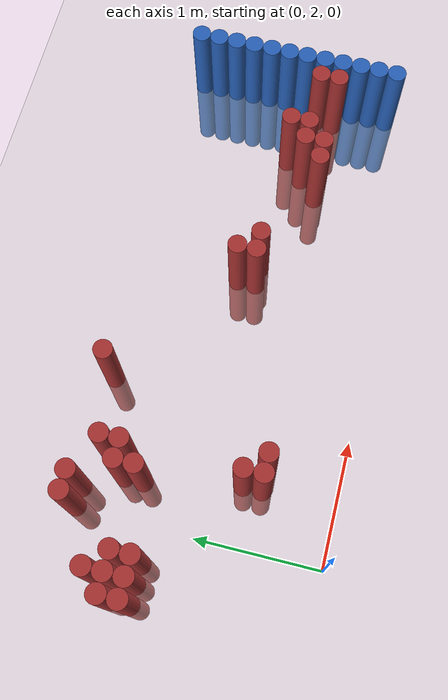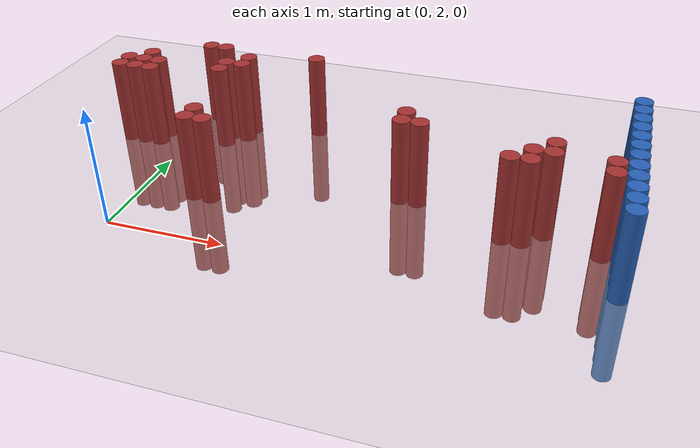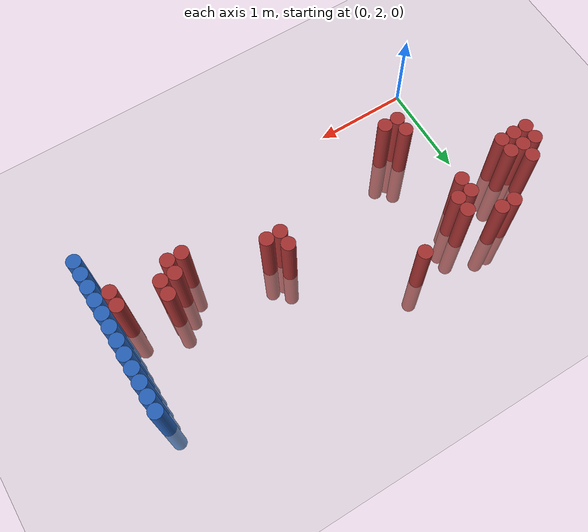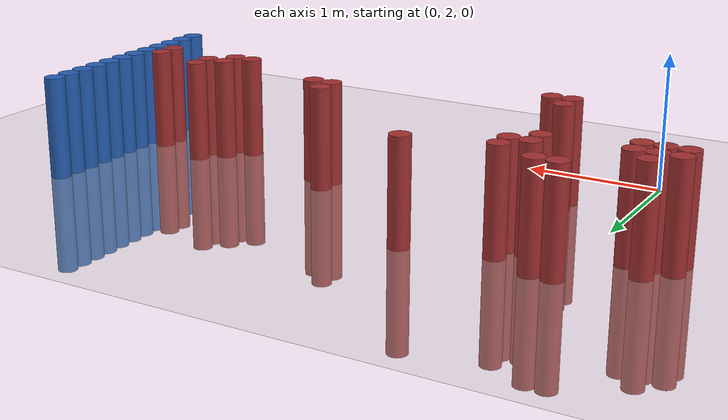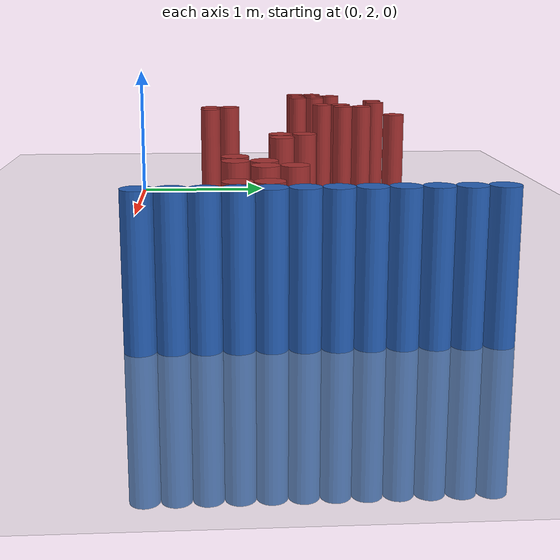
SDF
<sdf version="1.6">
 <world name="default">
  <model name="ground_plane">
   <static>1</static>
   <link name="link">
    <collision name="collision">
     <geometry><plane><normal>0 0 1</normal><size>100 100</size></plane></geometry>
     <surface><friction><ode><mu>100</mu><mu2>50</mu2></ode></friction></surface>
    </collision>
    <visual name="visual">
     <cast_shadows>0</cast_shadows>
     <geometry><plane><normal>0 0 1</normal><size>100 100</size></plane></geometry>
     <material>
      <script><uri>file://media/materials/scripts/gazebo.material</uri><name>Gazebo/Grey</name></script>
     </material>
    </visual>
   </link>
  </model>
  <model name="unit_cylinder_144">
   <static>1</static>
   <pose>3.925000 2.275000 0.000000 0.000000 0.000000 0.000000</pose>
   <link name="link">
    <inertial>
     <mass>1</mass>
     <inertia><ixx>0.145833</ixx><ixy>0</ixy><ixz>0</ixz><iyy>0.145833</iyy><iyz>0</iyz><izz>0.125</izz></inertia>
    </inertial>
    <collision name="collision">
     <geometry><cylinder><radius>0.075000</radius><length>1.5</length></cylinder></geometry>
    </collision>
    <visual name="visual">
     <geometry><cylinder><radius>0.075000</radius><length>1.5</length></cylinder></geometry>
     <material>
      <ambient>0.152000 0.379000 0.720000 1</ambient>
      <diffuse>0.152000 0.379000 0.720000 1</diffuse>
     </material>
     <material>
      <script><name>Gazebo/Grey</name><uri>file://media/materials/scripts/gazebo.material</uri></script>
     </material>
    </visual>
   </link>
  </model>
  <model name="unit_cylinder_146">
   <static>1</static>
   <pose>3.925000 2.425000 0.000000 0.000000 0.000000 0.000000</pose>
   <link name="link">
    <inertial>
     <mass>1</mass>
     <inertia><ixx>0.145833</ixx><ixy>0</ixy><ixz>0</ixz><iyy>0.145833</iyy><iyz>0</iyz><izz>0.125</izz></inertia>
    </inertial>
    <collision name="collision">
     <geometry><cylinder><radius>0.075000</radius><length>1.5</length></cylinder></geometry>
    </collision>
    <visual name="visual">
     <geometry><cylinder><radius>0.075000</radius><length>1.5</length></cylinder></geometry>
     <material>
      <ambient>0.152000 0.379000 0.720000 1</ambient>
      <diffuse>0.152000 0.379000 0.720000 1</diffuse>
     </material>
     <material>
      <script><name>Gazebo/Grey</name><uri>file://media/materials/scripts/gazebo.material</uri></script>
     </material>
    </visual>
   </link>
  </model>
  <model name="unit_cylinder_148">
   <static>1</static>
   <pose>3.925000 2.575000 0.000000 0.000000 0.000000 0.000000</pose>
   <link name="link">
    <inertial>
     <mass>1</mass>
     <inertia><ixx>0.145833</ixx><ixy>0</ixy><ixz>0</ixz><iyy>0.145833</iyy><iyz>0</iyz><izz>0.125</izz></inertia>
    </inertial>
    <collision name="collision">
     <geometry><cylinder><radius>0.075000</radius><length>1.5</length></cylinder></geometry>
    </collision>
    <visual name="visual">
     <geometry><cylinder><radius>0.075000</radius><length>1.5</length></cylinder></geometry>
     <material>
      <ambient>0.152000 0.379000 0.720000 1</ambient>
      <diffuse>0.152000 0.379000 0.720000 1</diffuse>
     </material>
     <material>
      <script><name>Gazebo/Grey</name><uri>file://media/materials/scripts/gazebo.material</uri></script>
     </material>
    </visual>
   </link>
  </model>
  <model name="unit_cylinder_150">
   <static>1</static>
   <pose>3.925000 2.725000 0.000000 0.000000 0.000000 0.000000</pose>
   <link name="link">
    <inertial>
     <mass>1</mass>
     <inertia><ixx>0.145833</ixx><ixy>0</ixy><ixz>0</ixz><iyy>0.145833</iyy><iyz>0</iyz><izz>0.125</izz></inertia>
    </inertial>
    <collision name="collision">
     <geometry><cylinder><radius>0.075000</radius><length>1.5</length></cylinder></geometry>
    </collision>
    <visual name="visual">
     <geometry><cylinder><radius>0.075000</radius><length>1.5</length></cylinder></geometry>
     <material>
      <ambient>0.152000 0.379000 0.720000 1</ambient>
      <diffuse>0.152000 0.379000 0.720000 1</diffuse>
     </material>
     <material>
      <script><name>Gazebo/Grey</name><uri>file://media/materials/scripts/gazebo.material</uri></script>
     </material>
    </visual>
   </link>
  </model>
  <model name="unit_cylinder_152">
   <static>1</static>
   <pose>3.925000 2.875000 0.000000 0.000000 0.000000 0.000000</pose>
   <link name="link">
    <inertial>
     <mass>1</mass>
     <inertia><ixx>0.145833</ixx><ixy>0</ixy><ixz>0</ixz><iyy>0.145833</iyy><iyz>0</iyz><izz>0.125</izz></inertia>
    </inertial>
    <collision name="collision">
     <geometry><cylinder><radius>0.075000</radius><length>1.5</length></cylinder></geometry>
    </collision>
    <visual name="visual">
     <geometry><cylinder><radius>0.075000</radius><length>1.5</length></cylinder></geometry>
     <material>
      <ambient>0.152000 0.379000 0.720000 1</ambient>
      <diffuse>0.152000 0.379000 0.720000 1</diffuse>
     </material>
     <material>
      <script><name>Gazebo/Grey</name><uri>file://media/materials/scripts/gazebo.material</uri></script>
     </material>
    </visual>
   </link>
  </model>
  <model name="unit_cylinder_154">
   <static>1</static>
   <pose>3.925000 3.025000 0.000000 0.000000 0.000000 0.000000</pose>
   <link name="link">
    <inertial>
     <mass>1</mass>
     <inertia><ixx>0.145833</ixx><ixy>0</ixy><ixz>0</ixz><iyy>0.145833</iyy><iyz>0</iyz><izz>0.125</izz></inertia>
    </inertial>
    <collision name="collision">
     <geometry><cylinder><radius>0.075000</radius><length>1.5</length></cylinder></geometry>
    </collision>
    <visual name="visual">
     <geometry><cylinder><radius>0.075000</radius><length>1.5</length></cylinder></geometry>
     <material>
      <ambient>0.152000 0.379000 0.720000 1</ambient>
      <diffuse>0.152000 0.379000 0.720000 1</diffuse>
     </material>
     <material>
      <script><name>Gazebo/Grey</name><uri>file://media/materials/scripts/gazebo.material</uri></script>
     </material>
    </visual>
   </link>
  </model>
  <model name="unit_cylinder_156">
   <static>1</static>
   <pose>3.925000 3.175000 0.000000 0.000000 0.000000 0.000000</pose>
   <link name="link">
    <inertial>
     <mass>1</mass>
     <inertia><ixx>0.145833</ixx><ixy>0</ixy><ixz>0</ixz><iyy>0.145833</iyy><iyz>0</iyz><izz>0.125</izz></inertia>
    </inertial>
    <collision name="collision">
     <geometry><cylinder><radius>0.075000</radius><length>1.5</length></cylinder></geometry>
    </collision>
    <visual name="visual">
     <geometry><cylinder><radius>0.075000</radius><length>1.5</length></cylinder></geometry>
     <material>
      <ambient>0.152000 0.379000 0.720000 1</ambient>
      <diffuse>0.152000 0.379000 0.720000 1</diffuse>
     </material>
     <material>
      <script><name>Gazebo/Grey</name><uri>file://media/materials/scripts/gazebo.material</uri></script>
     </material>
    </visual>
   </link>
  </model>
  <model name="unit_cylinder_158">
   <static>1</static>
   <pose>3.925000 3.325000 0.000000 0.000000 0.000000 0.000000</pose>
   <link name="link">
    <inertial>
     <mass>1</mass>
     <inertia><ixx>0.145833</ixx><ixy>0</ixy><ixz>0</ixz><iyy>0.145833</iyy><iyz>0</iyz><izz>0.125</izz></inertia>
    </inertial>
    <collision name="collision">
     <geometry><cylinder><radius>0.075000</radius><length>1.5</length></cylinder></geometry>
    </collision>
    <visual name="visual">
     <geometry><cylinder><radius>0.075000</radius><length>1.5</length></cylinder></geometry>
     <material>
      <ambient>0.152000 0.379000 0.720000 1</ambient>
      <diffuse>0.152000 0.379000 0.720000 1</diffuse>
     </material>
     <material>
      <script><name>Gazebo/Grey</name><uri>file://media/materials/scripts/gazebo.material</uri></script>
     </material>
    </visual>
   </link>
  </model>
  <model name="unit_cylinder_160">
   <static>1</static>
   <pose>3.925000 3.475000 0.000000 0.000000 0.000000 0.000000</pose>
   <link name="link">
    <inertial>
     <mass>1</mass>
     <inertia><ixx>0.145833</ixx><ixy>0</ixy><ixz>0</ixz><iyy>0.145833</iyy><iyz>0</iyz><izz>0.125</izz></inertia>
    </inertial>
    <collision name="collision">
     <geometry><cylinder><radius>0.075000</radius><length>1.5</length></cylinder></geometry>
    </collision>
    <visual name="visual">
     <geometry><cylinder><radius>0.075000</radius><length>1.5</length></cylinder></geometry>
     <material>
      <ambient>0.152000 0.379000 0.720000 1</ambient>
      <diffuse>0.152000 0.379000 0.720000 1</diffuse>
     </material>
     <material>
      <script><name>Gazebo/Grey</name><uri>file://media/materials/scripts/gazebo.material</uri></script>
     </material>
    </visual>
   </link>
  </model>
  <model name="unit_cylinder_162">
   <static>1</static>
   <pose>3.925000 3.625000 0.000000 0.000000 0.000000 0.000000</pose>
   <link name="link">
    <inertial>
     <mass>1</mass>
     <inertia><ixx>0.145833</ixx><ixy>0</ixy><ixz>0</ixz><iyy>0.145833</iyy><iyz>0</iyz><izz>0.125</izz></inertia>
    </inertial>
    <collision name="collision">
     <geometry><cylinder><radius>0.075000</radius><length>1.5</length></cylinder></geometry>
    </collision>
    <visual name="visual">
     <geometry><cylinder><radius>0.075000</radius><length>1.5</length></cylinder></geometry>
     <material>
      <ambient>0.152000 0.379000 0.720000 1</ambient>
      <diffuse>0.152000 0.379000 0.720000 1</diffuse>
     </material>
     <material>
      <script><name>Gazebo/Grey</name><uri>file://media/materials/scripts/gazebo.material</uri></script>
     </material>
    </visual>
   </link>
  </model>
  <model name="unit_cylinder_164">
   <static>1</static>
   <pose>3.925000 3.775000 0.000000 0.000000 0.000000 0.000000</pose>
   <link name="link">
    <inertial>
     <mass>1</mass>
     <inertia><ixx>0.145833</ixx><ixy>0</ixy><ixz>0</ixz><iyy>0.145833</iyy><iyz>0</iyz><izz>0.125</izz></inertia>
    </inertial>
    <collision name="collision">
     <geometry><cylinder><radius>0.075000</radius><length>1.5</length></cylinder></geometry>
    </collision>
    <visual name="visual">
     <geometry><cylinder><radius>0.075000</radius><length>1.5</length></cylinder></geometry>
     <material>
      <ambient>0.152000 0.379000 0.720000 1</ambient>
      <diffuse>0.152000 0.379000 0.720000 1</diffuse>
     </material>
     <material>
      <script><name>Gazebo/Grey</name><uri>file://media/materials/scripts/gazebo.material</uri></script>
     </material>
    </visual>
   </link>
  </model>
  <model name="unit_cylinder_166">
   <static>1</static>
   <pose>3.925000 3.925000 0.000000 0.000000 0.000000 0.000000</pose>
   <link name="link">
    <inertial>
     <mass>1</mass>
     <inertia><ixx>0.145833</ixx><ixy>0</ixy><ixz>0</ixz><iyy>0.145833</iyy><iyz>0</iyz><izz>0.125</izz></inertia>
    </inertial>
    <collision name="collision">
     <geometry><cylinder><radius>0.075000</radius><length>1.5</length></cylinder></geometry>
    </collision>
    <visual name="visual">
     <geometry><cylinder><radius>0.075000</radius><length>1.5</length></cylinder></geometry>
     <material>
      <ambient>0.152000 0.379000 0.720000 1</ambient>
      <diffuse>0.152000 0.379000 0.720000 1</diffuse>
     </material>
     <material>
      <script><name>Gazebo/Grey</name><uri>file://media/materials/scripts/gazebo.material</uri></script>
     </material>
    </visual>
   </link>
  </model>
  <model name="unit_cylinder_304">
   <static>1</static>
   <pose>-0.575000 3.325000 0.000000 0.000000 0.000000 0.000000</pose>
   <link name="link">
    <inertial>
     <mass>1</mass>
     <inertia><ixx>0.145833</ixx><ixy>0</ixy><ixz>0</ixz><iyy>0.145833</iyy><iyz>0</iyz><izz>0.125</izz></inertia>
    </inertial>
    <collision name="collision">
     <geometry><cylinder><radius>0.075000</radius><length>1.5</length></cylinder></geometry>
    </collision>
    <visual name="visual">
     <geometry><cylinder><radius>0.075000</radius><length>1.5</length></cylinder></geometry>
     <material>
      <ambient>0.648000 0.192000 0.192000 1</ambient>
      <diffuse>0.648000 0.192000 0.192000 1</diffuse>
     </material>
     <material>
      <script><name>Gazebo/Grey</name><uri>file://media/materials/scripts/gazebo.material</uri></script>
     </material>
    </visual>
   </link>
  </model>
  <model name="unit_cylinder_305">
   <static>1</static>
   <pose>-0.575000 3.475000 0.000000 0.000000 0.000000 0.000000</pose>
   <link name="link">
    <inertial>
     <mass>1</mass>
     <inertia><ixx>0.145833</ixx><ixy>0</ixy><ixz>0</ixz><iyy>0.145833</iyy><iyz>0</iyz><izz>0.125</izz></inertia>
    </inertial>
    <collision name="collision">
     <geometry><cylinder><radius>0.075000</radius><length>1.5</length></cylinder></geometry>
    </collision>
    <visual name="visual">
     <geometry><cylinder><radius>0.075000</radius><length>1.5</length></cylinder></geometry>
     <material>
      <ambient>0.648000 0.192000 0.192000 1</ambient>
      <diffuse>0.648000 0.192000 0.192000 1</diffuse>
     </material>
     <material>
      <script><name>Gazebo/Grey</name><uri>file://media/materials/scripts/gazebo.material</uri></script>
     </material>
    </visual>
   </link>
  </model>
  <model name="unit_cylinder_306">
   <static>1</static>
   <pose>-0.425000 3.325000 0.000000 0.000000 0.000000 0.000000</pose>
   <link name="link">
    <inertial>
     <mass>1</mass>
     <inertia><ixx>0.145833</ixx><ixy>0</ixy><ixz>0</ixz><iyy>0.145833</iyy><iyz>0</iyz><izz>0.125</izz></inertia>
    </inertial>
    <collision name="collision">
     <geometry><cylinder><radius>0.075000</radius><length>1.5</length></cylinder></geometry>
    </collision>
    <visual name="visual">
     <geometry><cylinder><radius>0.075000</radius><length>1.5</length></cylinder></geometry>
     <material>
      <ambient>0.648000 0.192000 0.192000 1</ambient>
      <diffuse>0.648000 0.192000 0.192000 1</diffuse>
     </material>
     <material>
      <script><name>Gazebo/Grey</name><uri>file://media/materials/scripts/gazebo.material</uri></script>
     </material>
    </visual>
   </link>
  </model>
  <model name="unit_cylinder_307">
   <static>1</static>
   <pose>-0.425000 3.475000 0.000000 0.000000 0.000000 0.000000</pose>
   <link name="link">
    <inertial>
     <mass>1</mass>
     <inertia><ixx>0.145833</ixx><ixy>0</ixy><ixz>0</ixz><iyy>0.145833</iyy><iyz>0</iyz><izz>0.125</izz></inertia>
    </inertial>
    <collision name="collision">
     <geometry><cylinder><radius>0.075000</radius><length>1.5</length></cylinder></geometry>
    </collision>
    <visual name="visual">
     <geometry><cylinder><radius>0.075000</radius><length>1.5</length></cylinder></geometry>
     <material>
      <ambient>0.648000 0.192000 0.192000 1</ambient>
      <diffuse>0.648000 0.192000 0.192000 1</diffuse>
     </material>
     <material>
      <script><name>Gazebo/Grey</name><uri>file://media/materials/scripts/gazebo.material</uri></script>
     </material>
    </visual>
   </link>
  </model>
  <model name="unit_cylinder_308">
   <static>1</static>
   <pose>-0.425000 3.625000 0.000000 0.000000 0.000000 0.000000</pose>
   <link name="link">
    <inertial>
     <mass>1</mass>
     <inertia><ixx>0.145833</ixx><ixy>0</ixy><ixz>0</ixz><iyy>0.145833</iyy><iyz>0</iyz><izz>0.125</izz></inertia>
    </inertial>
    <collision name="collision">
     <geometry><cylinder><radius>0.075000</radius><length>1.5</length></cylinder></geometry>
    </collision>
    <visual name="visual">
     <geometry><cylinder><radius>0.075000</radius><length>1.5</length></cylinder></geometry>
     <material>
      <ambient>0.648000 0.192000 0.192000 1</ambient>
      <diffuse>0.648000 0.192000 0.192000 1</diffuse>
     </material>
     <material>
      <script><name>Gazebo/Grey</name><uri>file://media/materials/scripts/gazebo.material</uri></script>
     </material>
    </visual>
   </link>
  </model>
  <model name="unit_cylinder_309">
   <static>1</static>
   <pose>-0.275000 3.325000 0.000000 0.000000 0.000000 0.000000</pose>
   <link name="link">
    <inertial>
     <mass>1</mass>
     <inertia><ixx>0.145833</ixx><ixy>0</ixy><ixz>0</ixz><iyy>0.145833</iyy><iyz>0</iyz><izz>0.125</izz></inertia>
    </inertial>
    <collision name="collision">
     <geometry><cylinder><radius>0.075000</radius><length>1.5</length></cylinder></geometry>
    </collision>
    <visual name="visual">
     <geometry><cylinder><radius>0.075000</radius><length>1.5</length></cylinder></geometry>
     <material>
      <ambient>0.648000 0.192000 0.192000 1</ambient>
      <diffuse>0.648000 0.192000 0.192000 1</diffuse>
     </material>
     <material>
      <script><name>Gazebo/Grey</name><uri>file://media/materials/scripts/gazebo.material</uri></script>
     </material>
    </visual>
   </link>
  </model>
  <model name="unit_cylinder_310">
   <static>1</static>
   <pose>-0.275000 3.475000 0.000000 0.000000 0.000000 0.000000</pose>
   <link name="link">
    <inertial>
     <mass>1</mass>
     <inertia><ixx>0.145833</ixx><ixy>0</ixy><ixz>0</ixz><iyy>0.145833</iyy><iyz>0</iyz><izz>0.125</izz></inertia>
    </inertial>
    <collision name="collision">
     <geometry><cylinder><radius>0.075000</radius><length>1.5</length></cylinder></geometry>
    </collision>
    <visual name="visual">
     <geometry><cylinder><radius>0.075000</radius><length>1.5</length></cylinder></geometry>
     <material>
      <ambient>0.648000 0.192000 0.192000 1</ambient>
      <diffuse>0.648000 0.192000 0.192000 1</diffuse>
     </material>
     <material>
      <script><name>Gazebo/Grey</name><uri>file://media/materials/scripts/gazebo.material</uri></script>
     </material>
    </visual>
   </link>
  </model>
  <model name="unit_cylinder_311">
   <static>1</static>
   <pose>0.025000 3.925000 0.000000 0.000000 0.000000 0.000000</pose>
   <link name="link">
    <inertial>
     <mass>1</mass>
     <inertia><ixx>0.145833</ixx><ixy>0</ixy><ixz>0</ixz><iyy>0.145833</iyy><iyz>0</iyz><izz>0.125</izz></inertia>
    </inertial>
    <collision name="collision">
     <geometry><cylinder><radius>0.075000</radius><length>1.5</length></cylinder></geometry>
    </collision>
    <visual name="visual">
     <geometry><cylinder><radius>0.075000</radius><length>1.5</length></cylinder></geometry>
     <material>
      <ambient>0.648000 0.192000 0.192000 1</ambient>
      <diffuse>0.648000 0.192000 0.192000 1</diffuse>
     </material>
     <material>
      <script><name>Gazebo/Grey</name><uri>file://media/materials/scripts/gazebo.material</uri></script>
     </material>
    </visual>
   </link>
  </model>
  <model name="unit_cylinder_313">
   <static>1</static>
   <pose>0.175000 3.925000 0.000000 0.000000 0.000000 0.000000</pose>
   <link name="link">
    <inertial>
     <mass>1</mass>
     <inertia><ixx>0.145833</ixx><ixy>0</ixy><ixz>0</ixz><iyy>0.145833</iyy><iyz>0</iyz><izz>0.125</izz></inertia>
    </inertial>
    <collision name="collision">
     <geometry><cylinder><radius>0.075000</radius><length>1.5</length></cylinder></geometry>
    </collision>
    <visual name="visual">
     <geometry><cylinder><radius>0.075000</radius><length>1.5</length></cylinder></geometry>
     <material>
      <ambient>0.648000 0.192000 0.192000 1</ambient>
      <diffuse>0.648000 0.192000 0.192000 1</diffuse>
     </material>
     <material>
      <script><name>Gazebo/Grey</name><uri>file://media/materials/scripts/gazebo.material</uri></script>
     </material>
    </visual>
   </link>
  </model>
  <model name="unit_cylinder_314">
   <static>1</static>
   <pose>0.325000 3.475000 0.000000 0.000000 0.000000 0.000000</pose>
   <link name="link">
    <inertial>
     <mass>1</mass>
     <inertia><ixx>0.145833</ixx><ixy>0</ixy><ixz>0</ixz><iyy>0.145833</iyy><iyz>0</iyz><izz>0.125</izz></inertia>
    </inertial>
    <collision name="collision">
     <geometry><cylinder><radius>0.075000</radius><length>1.5</length></cylinder></geometry>
    </collision>
    <visual name="visual">
     <geometry><cylinder><radius>0.075000</radius><length>1.5</length></cylinder></geometry>
     <material>
      <ambient>0.648000 0.192000 0.192000 1</ambient>
      <diffuse>0.648000 0.192000 0.192000 1</diffuse>
     </material>
     <material>
      <script><name>Gazebo/Grey</name><uri>file://media/materials/scripts/gazebo.material</uri></script>
     </material>
    </visual>
   </link>
  </model>
  <model name="unit_cylinder_315">
   <static>1</static>
   <pose>0.325000 3.625000 0.000000 0.000000 0.000000 0.000000</pose>
   <link name="link">
    <inertial>
     <mass>1</mass>
     <inertia><ixx>0.145833</ixx><ixy>0</ixy><ixz>0</ixz><iyy>0.145833</iyy><iyz>0</iyz><izz>0.125</izz></inertia>
    </inertial>
    <collision name="collision">
     <geometry><cylinder><radius>0.075000</radius><length>1.5</length></cylinder></geometry>
    </collision>
    <visual name="visual">
     <geometry><cylinder><radius>0.075000</radius><length>1.5</length></cylinder></geometry>
     <material>
      <ambient>0.648000 0.192000 0.192000 1</ambient>
      <diffuse>0.648000 0.192000 0.192000 1</diffuse>
     </material>
     <material>
      <script><name>Gazebo/Grey</name><uri>file://media/materials/scripts/gazebo.material</uri></script>
     </material>
    </visual>
   </link>
  </model>
  <model name="unit_cylinder_317">
   <static>1</static>
   <pose>0.475000 2.575000 0.000000 0.000000 0.000000 0.000000</pose>
   <link name="link">
    <inertial>
     <mass>1</mass>
     <inertia><ixx>0.145833</ixx><ixy>0</ixy><ixz>0</ixz><iyy>0.145833</iyy><iyz>0</iyz><izz>0.125</izz></inertia>
    </inertial>
    <collision name="collision">
     <geometry><cylinder><radius>0.075000</radius><length>1.5</length></cylinder></geometry>
    </collision>
    <visual name="visual">
     <geometry><cylinder><radius>0.075000</radius><length>1.5</length></cylinder></geometry>
     <material>
      <ambient>0.648000 0.192000 0.192000 1</ambient>
      <diffuse>0.648000 0.192000 0.192000 1</diffuse>
     </material>
     <material>
      <script><name>Gazebo/Grey</name><uri>file://media/materials/scripts/gazebo.material</uri></script>
     </material>
    </visual>
   </link>
  </model>
  <model name="unit_cylinder_318">
   <static>1</static>
   <pose>0.475000 2.725000 0.000000 0.000000 0.000000 0.000000</pose>
   <link name="link">
    <inertial>
     <mass>1</mass>
     <inertia><ixx>0.145833</ixx><ixy>0</ixy><ixz>0</ixz><iyy>0.145833</iyy><iyz>0</iyz><izz>0.125</izz></inertia>
    </inertial>
    <collision name="collision">
     <geometry><cylinder><radius>0.075000</radius><length>1.5</length></cylinder></geometry>
    </collision>
    <visual name="visual">
     <geometry><cylinder><radius>0.075000</radius><length>1.5</length></cylinder></geometry>
     <material>
      <ambient>0.648000 0.192000 0.192000 1</ambient>
      <diffuse>0.648000 0.192000 0.192000 1</diffuse>
     </material>
     <material>
      <script><name>Gazebo/Grey</name><uri>file://media/materials/scripts/gazebo.material</uri></script>
     </material>
    </visual>
   </link>
  </model>
  <model name="unit_cylinder_319">
   <static>1</static>
   <pose>0.475000 3.625000 0.000000 0.000000 0.000000 0.000000</pose>
   <link name="link">
    <inertial>
     <mass>1</mass>
     <inertia><ixx>0.145833</ixx><ixy>0</ixy><ixz>0</ixz><iyy>0.145833</iyy><iyz>0</iyz><izz>0.125</izz></inertia>
    </inertial>
    <collision name="collision">
     <geometry><cylinder><radius>0.075000</radius><length>1.5</length></cylinder></geometry>
    </collision>
    <visual name="visual">
     <geometry><cylinder><radius>0.075000</radius><length>1.5</length></cylinder></geometry>
     <material>
      <ambient>0.648000 0.192000 0.192000 1</ambient>
      <diffuse>0.648000 0.192000 0.192000 1</diffuse>
     </material>
     <material>
      <script><name>Gazebo/Grey</name><uri>file://media/materials/scripts/gazebo.material</uri></script>
     </material>
    </visual>
   </link>
  </model>
  <model name="unit_cylinder_320">
   <static>1</static>
   <pose>0.475000 3.775000 0.000000 0.000000 0.000000 0.000000</pose>
   <link name="link">
    <inertial>
     <mass>1</mass>
     <inertia><ixx>0.145833</ixx><ixy>0</ixy><ixz>0</ixz><iyy>0.145833</iyy><iyz>0</iyz><izz>0.125</izz></inertia>
    </inertial>
    <collision name="collision">
     <geometry><cylinder><radius>0.075000</radius><length>1.5</length></cylinder></geometry>
    </collision>
    <visual name="visual">
     <geometry><cylinder><radius>0.075000</radius><length>1.5</length></cylinder></geometry>
     <material>
      <ambient>0.648000 0.192000 0.192000 1</ambient>
      <diffuse>0.648000 0.192000 0.192000 1</diffuse>
     </material>
     <material>
      <script><name>Gazebo/Grey</name><uri>file://media/materials/scripts/gazebo.material</uri></script>
     </material>
    </visual>
   </link>
  </model>
  <model name="unit_cylinder_325">
   <static>1</static>
   <pose>0.625000 2.575000 0.000000 0.000000 0.000000 0.000000</pose>
   <link name="link">
    <inertial>
     <mass>1</mass>
     <inertia><ixx>0.145833</ixx><ixy>0</ixy><ixz>0</ixz><iyy>0.145833</iyy><iyz>0</iyz><izz>0.125</izz></inertia>
    </inertial>
    <collision name="collision">
     <geometry><cylinder><radius>0.075000</radius><length>1.5</length></cylinder></geometry>
    </collision>
    <visual name="visual">
     <geometry><cylinder><radius>0.075000</radius><length>1.5</length></cylinder></geometry>
     <material>
      <ambient>0.648000 0.192000 0.192000 1</ambient>
      <diffuse>0.648000 0.192000 0.192000 1</diffuse>
     </material>
     <material>
      <script><name>Gazebo/Grey</name><uri>file://media/materials/scripts/gazebo.material</uri></script>
     </material>
    </visual>
   </link>
  </model>
  <model name="unit_cylinder_327">
   <static>1</static>
   <pose>1.075000 3.925000 0.000000 0.000000 0.000000 0.000000</pose>
   <link name="link">
    <inertial>
     <mass>1</mass>
     <inertia><ixx>0.145833</ixx><ixy>0</ixy><ixz>0</ixz><iyy>0.145833</iyy><iyz>0</iyz><izz>0.125</izz></inertia>
    </inertial>
    <collision name="collision">
     <geometry><cylinder><radius>0.075000</radius><length>1.5</length></cylinder></geometry>
    </collision>
    <visual name="visual">
     <geometry><cylinder><radius>0.075000</radius><length>1.5</length></cylinder></geometry>
     <material>
      <ambient>0.648000 0.192000 0.192000 1</ambient>
      <diffuse>0.648000 0.192000 0.192000 1</diffuse>
     </material>
     <material>
      <script><name>Gazebo/Grey</name><uri>file://media/materials/scripts/gazebo.material</uri></script>
     </material>
    </visual>
   </link>
  </model>
  <model name="unit_cylinder_338">
   <static>1</static>
   <pose>2.125000 3.025000 0.000000 0.000000 0.000000 0.000000</pose>
   <link name="link">
    <inertial>
     <mass>1</mass>
     <inertia><ixx>0.145833</ixx><ixy>0</ixy><ixz>0</ixz><iyy>0.145833</iyy><iyz>0</iyz><izz>0.125</izz></inertia>
    </inertial>
    <collision name="collision">
     <geometry><cylinder><radius>0.075000</radius><length>1.5</length></cylinder></geometry>
    </collision>
    <visual name="visual">
     <geometry><cylinder><radius>0.075000</radius><length>1.5</length></cylinder></geometry>
     <material>
      <ambient>0.648000 0.192000 0.192000 1</ambient>
      <diffuse>0.648000 0.192000 0.192000 1</diffuse>
     </material>
     <material>
      <script><name>Gazebo/Grey</name><uri>file://media/materials/scripts/gazebo.material</uri></script>
     </material>
    </visual>
   </link>
  </model>
  <model name="unit_cylinder_339">
   <static>1</static>
   <pose>2.125000 3.175000 0.000000 0.000000 0.000000 0.000000</pose>
   <link name="link">
    <inertial>
     <mass>1</mass>
     <inertia><ixx>0.145833</ixx><ixy>0</ixy><ixz>0</ixz><iyy>0.145833</iyy><iyz>0</iyz><izz>0.125</izz></inertia>
    </inertial>
    <collision name="collision">
     <geometry><cylinder><radius>0.075000</radius><length>1.5</length></cylinder></geometry>
    </collision>
    <visual name="visual">
     <geometry><cylinder><radius>0.075000</radius><length>1.5</length></cylinder></geometry>
     <material>
      <ambient>0.648000 0.192000 0.192000 1</ambient>
      <diffuse>0.648000 0.192000 0.192000 1</diffuse>
     </material>
     <material>
      <script><name>Gazebo/Grey</name><uri>file://media/materials/scripts/gazebo.material</uri></script>
     </material>
    </visual>
   </link>
  </model>
  <model name="unit_cylinder_348">
   <static>1</static>
   <pose>2.275000 3.025000 0.000000 0.000000 0.000000 0.000000</pose>
   <link name="link">
    <inertial>
     <mass>1</mass>
     <inertia><ixx>0.145833</ixx><ixy>0</ixy><ixz>0</ixz><iyy>0.145833</iyy><iyz>0</iyz><izz>0.125</izz></inertia>
    </inertial>
    <collision name="collision">
     <geometry><cylinder><radius>0.075000</radius><length>1.5</length></cylinder></geometry>
    </collision>
    <visual name="visual">
     <geometry><cylinder><radius>0.075000</radius><length>1.5</length></cylinder></geometry>
     <material>
      <ambient>0.648000 0.192000 0.192000 1</ambient>
      <diffuse>0.648000 0.192000 0.192000 1</diffuse>
     </material>
     <material>
      <script><name>Gazebo/Grey</name><uri>file://media/materials/scripts/gazebo.material</uri></script>
     </material>
    </visual>
   </link>
  </model>
  <model name="unit_cylinder_370">
   <static>1</static>
   <pose>3.025000 2.725000 0.000000 0.000000 0.000000 0.000000</pose>
   <link name="link">
    <inertial>
     <mass>1</mass>
     <inertia><ixx>0.145833</ixx><ixy>0</ixy><ixz>0</ixz><iyy>0.145833</iyy><iyz>0</iyz><izz>0.125</izz></inertia>
    </inertial>
    <collision name="collision">
     <geometry><cylinder><radius>0.075000</radius><length>1.5</length></cylinder></geometry>
    </collision>
    <visual name="visual">
     <geometry><cylinder><radius>0.075000</radius><length>1.5</length></cylinder></geometry>
     <material>
      <ambient>0.648000 0.192000 0.192000 1</ambient>
      <diffuse>0.648000 0.192000 0.192000 1</diffuse>
     </material>
     <material>
      <script><name>Gazebo/Grey</name><uri>file://media/materials/scripts/gazebo.material</uri></script>
     </material>
    </visual>
   </link>
  </model>
  <model name="unit_cylinder_373">
   <static>1</static>
   <pose>3.175000 2.725000 0.000000 0.000000 0.000000 0.000000</pose>
   <link name="link">
    <inertial>
     <mass>1</mass>
     <inertia><ixx>0.145833</ixx><ixy>0</ixy><ixz>0</ixz><iyy>0.145833</iyy><iyz>0</iyz><izz>0.125</izz></inertia>
    </inertial>
    <collision name="collision">
     <geometry><cylinder><radius>0.075000</radius><length>1.5</length></cylinder></geometry>
    </collision>
    <visual name="visual">
     <geometry><cylinder><radius>0.075000</radius><length>1.5</length></cylinder></geometry>
     <material>
      <ambient>0.648000 0.192000 0.192000 1</ambient>
      <diffuse>0.648000 0.192000 0.192000 1</diffuse>
     </material>
     <material>
      <script><name>Gazebo/Grey</name><uri>file://media/materials/scripts/gazebo.material</uri></script>
     </material>
    </visual>
   </link>
  </model>
  <model name="unit_cylinder_374">
   <static>1</static>
   <pose>3.175000 2.875000 0.000000 0.000000 0.000000 0.000000</pose>
   <link name="link">
    <inertial>
     <mass>1</mass>
     <inertia><ixx>0.145833</ixx><ixy>0</ixy><ixz>0</ixz><iyy>0.145833</iyy><iyz>0</iyz><izz>0.125</izz></inertia>
    </inertial>
    <collision name="collision">
     <geometry><cylinder><radius>0.075000</radius><length>1.5</length></cylinder></geometry>
    </collision>
    <visual name="visual">
     <geometry><cylinder><radius>0.075000</radius><length>1.5</length></cylinder></geometry>
     <material>
      <ambient>0.648000 0.192000 0.192000 1</ambient>
      <diffuse>0.648000 0.192000 0.192000 1</diffuse>
     </material>
     <material>
      <script><name>Gazebo/Grey</name><uri>file://media/materials/scripts/gazebo.material</uri></script>
     </material>
    </visual>
   </link>
  </model>
  <model name="unit_cylinder_379">
   <static>1</static>
   <pose>3.325000 2.875000 0.000000 0.000000 0.000000 0.000000</pose>
   <link name="link">
    <inertial>
     <mass>1</mass>
     <inertia><ixx>0.145833</ixx><ixy>0</ixy><ixz>0</ixz><iyy>0.145833</iyy><iyz>0</iyz><izz>0.125</izz></inertia>
    </inertial>
    <collision name="collision">
     <geometry><cylinder><radius>0.075000</radius><length>1.5</length></cylinder></geometry>
    </collision>
    <visual name="visual">
     <geometry><cylinder><radius>0.075000</radius><length>1.5</length></cylinder></geometry>
     <material>
      <ambient>0.648000 0.192000 0.192000 1</ambient>
      <diffuse>0.648000 0.192000 0.192000 1</diffuse>
     </material>
     <material>
      <script><name>Gazebo/Grey</name><uri>file://media/materials/scripts/gazebo.material</uri></script>
     </material>
    </visual>
   </link>
  </model>
  <model name="unit_cylinder_380">
   <static>1</static>
   <pose>3.325000 3.025000 0.000000 0.000000 0.000000 0.000000</pose>
   <link name="link">
    <inertial>
     <mass>1</mass>
     <inertia><ixx>0.145833</ixx><ixy>0</ixy><ixz>0</ixz><iyy>0.145833</iyy><iyz>0</iyz><izz>0.125</izz></inertia>
    </inertial>
    <collision name="collision">
     <geometry><cylinder><radius>0.075000</radius><length>1.5</length></cylinder></geometry>
    </collision>
    <visual name="visual">
     <geometry><cylinder><radius>0.075000</radius><length>1.5</length></cylinder></geometry>
     <material>
      <ambient>0.648000 0.192000 0.192000 1</ambient>
      <diffuse>0.648000 0.192000 0.192000 1</diffuse>
     </material>
     <material>
      <script><name>Gazebo/Grey</name><uri>file://media/materials/scripts/gazebo.material</uri></script>
     </material>
    </visual>
   </link>
  </model>
  <model name="unit_cylinder_391">
   <static>1</static>
   <pose>3.775000 2.725000 0.000000 0.000000 0.000000 0.000000</pose>
   <link name="link">
    <inertial>
     <mass>1</mass>
     <inertia><ixx>0.145833</ixx><ixy>0</ixy><ixz>0</ixz><iyy>0.145833</iyy><iyz>0</iyz><izz>0.125</izz></inertia>
    </inertial>
    <collision name="collision">
     <geometry><cylinder><radius>0.075000</radius><length>1.5</length></cylinder></geometry>
    </collision>
    <visual name="visual">
     <geometry><cylinder><radius>0.075000</radius><length>1.5</length></cylinder></geometry>
     <material>
      <ambient>0.648000 0.192000 0.192000 1</ambient>
      <diffuse>0.648000 0.192000 0.192000 1</diffuse>
     </material>
     <material>
      <script><name>Gazebo/Grey</name><uri>file://media/materials/scripts/gazebo.material</uri></script>
     </material>
    </visual>
   </link>
  </model>
  <model name="unit_cylinder_392">
   <static>1</static>
   <pose>3.775000 2.875000 0.000000 0.000000 0.000000 0.000000</pose>
   <link name="link">
    <inertial>
     <mass>1</mass>
     <inertia><ixx>0.145833</ixx><ixy>0</ixy><ixz>0</ixz><iyy>0.145833</iyy><iyz>0</iyz><izz>0.125</izz></inertia>
    </inertial>
    <collision name="collision">
     <geometry><cylinder><radius>0.075000</radius><length>1.5</length></cylinder></geometry>
    </collision>
    <visual name="visual">
     <geometry><cylinder><radius>0.075000</radius><length>1.5</length></cylinder></geometry>
     <material>
      <ambient>0.648000 0.192000 0.192000 1</ambient>
      <diffuse>0.648000 0.192000 0.192000 1</diffuse>
     </material>
     <material>
      <script><name>Gazebo/Grey</name><uri>file://media/materials/scripts/gazebo.material</uri></script>
     </material>
    </visual>
   </link>
  </model>
  <model name="unit_cylinder_426">
   <static>1</static>
   <pose>3.925000 2.275000 0.000000 0.000000 0.000000 0.000000</pose>
   <link name="link">
    <inertial>
     <mass>1</mass>
     <inertia><ixx>0.145833</ixx><ixy>0</ixy><ixz>0</ixz><iyy>0.145833</iyy><iyz>0</iyz><izz>0.125</izz></inertia>
    </inertial>
    <collision name="collision">
     <geometry><cylinder><radius>0.075000</radius><length>1.5</length></cylinder></geometry>
    </collision>
    <visual name="visual">
     <geometry><cylinder><radius>0.075000</radius><length>1.5</length></cylinder></geometry>
     <material>
      <ambient>0.152000 0.379000 0.720000 1</ambient>
      <diffuse>0.152000 0.379000 0.720000 1</diffuse>
     </material>
     <material>
      <script><name>Gazebo/Grey</name><uri>file://media/materials/scripts/gazebo.material</uri></script>
     </material>
    </visual>
   </link>
  </model>
  <model name="unit_cylinder_427">
   <static>1</static>
   <pose>3.925000 2.425000 0.000000 0.000000 0.000000 0.000000</pose>
   <link name="link">
    <inertial>
     <mass>1</mass>
     <inertia><ixx>0.145833</ixx><ixy>0</ixy><ixz>0</ixz><iyy>0.145833</iyy><iyz>0</iyz><izz>0.125</izz></inertia>
    </inertial>
    <collision name="collision">
     <geometry><cylinder><radius>0.075000</radius><length>1.5</length></cylinder></geometry>
    </collision>
    <visual name="visual">
     <geometry><cylinder><radius>0.075000</radius><length>1.5</length></cylinder></geometry>
     <material>
      <ambient>0.152000 0.379000 0.720000 1</ambient>
      <diffuse>0.152000 0.379000 0.720000 1</diffuse>
     </material>
     <material>
      <script><name>Gazebo/Grey</name><uri>file://media/materials/scripts/gazebo.material</uri></script>
     </material>
    </visual>
   </link>
  </model>
  <model name="unit_cylinder_428">
   <static>1</static>
   <pose>3.925000 2.575000 0.000000 0.000000 0.000000 0.000000</pose>
   <link name="link">
    <inertial>
     <mass>1</mass>
     <inertia><ixx>0.145833</ixx><ixy>0</ixy><ixz>0</ixz><iyy>0.145833</iyy><iyz>0</iyz><izz>0.125</izz></inertia>
    </inertial>
    <collision name="collision">
     <geometry><cylinder><radius>0.075000</radius><length>1.5</length></cylinder></geometry>
    </collision>
    <visual name="visual">
     <geometry><cylinder><radius>0.075000</radius><length>1.5</length></cylinder></geometry>
     <material>
      <ambient>0.152000 0.379000 0.720000 1</ambient>
      <diffuse>0.152000 0.379000 0.720000 1</diffuse>
     </material>
     <material>
      <script><name>Gazebo/Grey</name><uri>file://media/materials/scripts/gazebo.material</uri></script>
     </material>
    </visual>
   </link>
  </model>
  <model name="unit_cylinder_429">
   <static>1</static>
   <pose>3.925000 2.725000 0.000000 0.000000 0.000000 0.000000</pose>
   <link name="link">
    <inertial>
     <mass>1</mass>
     <inertia><ixx>0.145833</ixx><ixy>0</ixy><ixz>0</ixz><iyy>0.145833</iyy><iyz>0</iyz><izz>0.125</izz></inertia>
    </inertial>
    <collision name="collision">
     <geometry><cylinder><radius>0.075000</radius><length>1.5</length></cylinder></geometry>
    </collision>
    <visual name="visual">
     <geometry><cylinder><radius>0.075000</radius><length>1.5</length></cylinder></geometry>
     <material>
      <ambient>0.152000 0.379000 0.720000 1</ambient>
      <diffuse>0.152000 0.379000 0.720000 1</diffuse>
     </material>
     <material>
      <script><name>Gazebo/Grey</name><uri>file://media/materials/scripts/gazebo.material</uri></script>
     </material>
    </visual>
   </link>
  </model>
  <model name="unit_cylinder_430">
   <static>1</static>
   <pose>3.925000 2.875000 0.000000 0.000000 0.000000 0.000000</pose>
   <link name="link">
    <inertial>
     <mass>1</mass>
     <inertia><ixx>0.145833</ixx><ixy>0</ixy><ixz>0</ixz><iyy>0.145833</iyy><iyz>0</iyz><izz>0.125</izz></inertia>
    </inertial>
    <collision name="collision">
     <geometry><cylinder><radius>0.075000</radius><length>1.5</length></cylinder></geometry>
    </collision>
    <visual name="visual">
     <geometry><cylinder><radius>0.075000</radius><length>1.5</length></cylinder></geometry>
     <material>
      <ambient>0.152000 0.379000 0.720000 1</ambient>
      <diffuse>0.152000 0.379000 0.720000 1</diffuse>
     </material>
     <material>
      <script><name>Gazebo/Grey</name><uri>file://media/materials/scripts/gazebo.material</uri></script>
     </material>
    </visual>
   </link>
  </model>
  <model name="unit_cylinder_431">
   <static>1</static>
   <pose>3.925000 3.025000 0.000000 0.000000 0.000000 0.000000</pose>
   <link name="link">
    <inertial>
     <mass>1</mass>
     <inertia><ixx>0.145833</ixx><ixy>0</ixy><ixz>0</ixz><iyy>0.145833</iyy><iyz>0</iyz><izz>0.125</izz></inertia>
    </inertial>
    <collision name="collision">
     <geometry><cylinder><radius>0.075000</radius><length>1.5</length></cylinder></geometry>
    </collision>
    <visual name="visual">
     <geometry><cylinder><radius>0.075000</radius><length>1.5</length></cylinder></geometry>
     <material>
      <ambient>0.152000 0.379000 0.720000 1</ambient>
      <diffuse>0.152000 0.379000 0.720000 1</diffuse>
     </material>
     <material>
      <script><name>Gazebo/Grey</name><uri>file://media/materials/scripts/gazebo.material</uri></script>
     </material>
    </visual>
   </link>
  </model>
  <model name="unit_cylinder_432">
   <static>1</static>
   <pose>3.925000 3.175000 0.000000 0.000000 0.000000 0.000000</pose>
   <link name="link">
    <inertial>
     <mass>1</mass>
     <inertia><ixx>0.145833</ixx><ixy>0</ixy><ixz>0</ixz><iyy>0.145833</iyy><iyz>0</iyz><izz>0.125</izz></inertia>
    </inertial>
    <collision name="collision">
     <geometry><cylinder><radius>0.075000</radius><length>1.5</length></cylinder></geometry>
    </collision>
    <visual name="visual">
     <geometry><cylinder><radius>0.075000</radius><length>1.5</length></cylinder></geometry>
     <material>
      <ambient>0.152000 0.379000 0.720000 1</ambient>
      <diffuse>0.152000 0.379000 0.720000 1</diffuse>
     </material>
     <material>
      <script><name>Gazebo/Grey</name><uri>file://media/materials/scripts/gazebo.material</uri></script>
     </material>
    </visual>
   </link>
  </model>
  <model name="unit_cylinder_433">
   <static>1</static>
   <pose>3.925000 3.325000 0.000000 0.000000 0.000000 0.000000</pose>
   <link name="link">
    <inertial>
     <mass>1</mass>
     <inertia><ixx>0.145833</ixx><ixy>0</ixy><ixz>0</ixz><iyy>0.145833</iyy><iyz>0</iyz><izz>0.125</izz></inertia>
    </inertial>
    <collision name="collision">
     <geometry><cylinder><radius>0.075000</radius><length>1.5</length></cylinder></geometry>
    </collision>
    <visual name="visual">
     <geometry><cylinder><radius>0.075000</radius><length>1.5</length></cylinder></geometry>
     <material>
      <ambient>0.152000 0.379000 0.720000 1</ambient>
      <diffuse>0.152000 0.379000 0.720000 1</diffuse>
     </material>
     <material>
      <script><name>Gazebo/Grey</name><uri>file://media/materials/scripts/gazebo.material</uri></script>
     </material>
    </visual>
   </link>
  </model>
  <model name="unit_cylinder_434">
   <static>1</static>
   <pose>3.925000 3.475000 0.000000 0.000000 0.000000 0.000000</pose>
   <link name="link">
    <inertial>
     <mass>1</mass>
     <inertia><ixx>0.145833</ixx><ixy>0</ixy><ixz>0</ixz><iyy>0.145833</iyy><iyz>0</iyz><izz>0.125</izz></inertia>
    </inertial>
    <collision name="collision">
     <geometry><cylinder><radius>0.075000</radius><length>1.5</length></cylinder></geometry>
    </collision>
    <visual name="visual">
     <geometry><cylinder><radius>0.075000</radius><length>1.5</length></cylinder></geometry>
     <material>
      <ambient>0.152000 0.379000 0.720000 1</ambient>
      <diffuse>0.152000 0.379000 0.720000 1</diffuse>
     </material>
     <material>
      <script><name>Gazebo/Grey</name><uri>file://media/materials/scripts/gazebo.material</uri></script>
     </material>
    </visual>
   </link>
  </model>
  <model name="unit_cylinder_435">
   <static>1</static>
   <pose>3.925000 3.625000 0.000000 0.000000 0.000000 0.000000</pose>
   <link name="link">
    <inertial>
     <mass>1</mass>
     <inertia><ixx>0.145833</ixx><ixy>0</ixy><ixz>0</ixz><iyy>0.145833</iyy><iyz>0</iyz><izz>0.125</izz></inertia>
    </inertial>
    <collision name="collision">
     <geometry><cylinder><radius>0.075000</radius><length>1.5</length></cylinder></geometry>
    </collision>
    <visual name="visual">
     <geometry><cylinder><radius>0.075000</radius><length>1.5</length></cylinder></geometry>
     <material>
      <ambient>0.152000 0.379000 0.720000 1</ambient>
      <diffuse>0.152000 0.379000 0.720000 1</diffuse>
     </material>
     <material>
      <script><name>Gazebo/Grey</name><uri>file://media/materials/scripts/gazebo.material</uri></script>
     </material>
    </visual>
   </link>
  </model>
  <model name="unit_cylinder_436">
   <static>1</static>
   <pose>3.925000 3.775000 0.000000 0.000000 0.000000 0.000000</pose>
   <link name="link">
    <inertial>
     <mass>1</mass>
     <inertia><ixx>0.145833</ixx><ixy>0</ixy><ixz>0</ixz><iyy>0.145833</iyy><iyz>0</iyz><izz>0.125</izz></inertia>
    </inertial>
    <collision name="collision">
     <geometry><cylinder><radius>0.075000</radius><length>1.5</length></cylinder></geometry>
    </collision>
    <visual name="visual">
     <geometry><cylinder><radius>0.075000</radius><length>1.5</length></cylinder></geometry>
     <material>
      <ambient>0.152000 0.379000 0.720000 1</ambient>
      <diffuse>0.152000 0.379000 0.720000 1</diffuse>
     </material>
     <material>
      <script><name>Gazebo/Grey</name><uri>file://media/materials/scripts/gazebo.material</uri></script>
     </material>
    </visual>
   </link>
  </model>
 </world>
</sdf>
